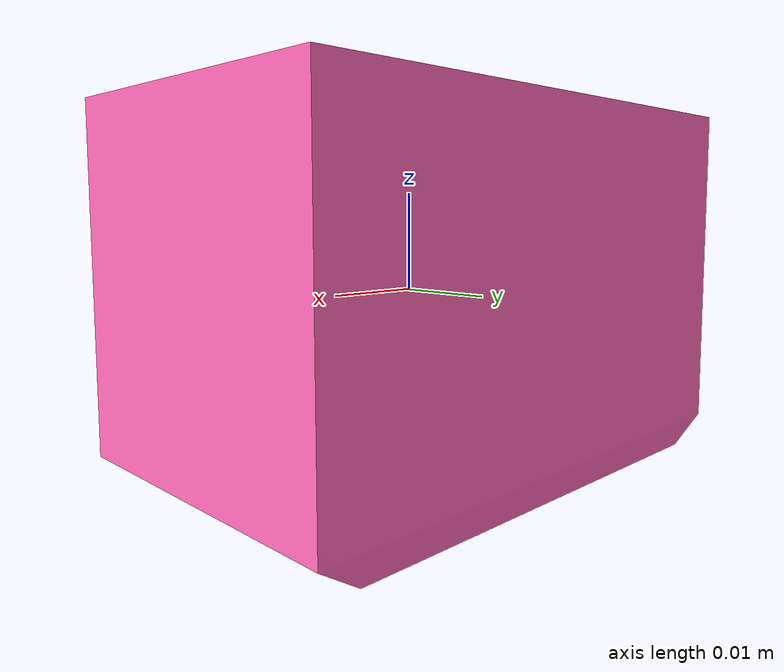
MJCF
<mujoco model="shapenetsem33">
  <asset>
    <mesh file="meshes/shapenetsem33/shapenetsem33_0.stl" name="shapenetsem33_0" scale="0.9 0.9 0.9"/>
    <texture file="../textures/texture33-0.png" type="2d" name="tex-sem33"/>
    <material name="sem33" reflectance="0.7" texrepeat="90 90" texture="tex-sem33" texuniform="true"/>
  </asset>
  <worldbody>
    <body>
      <body name="collision">
        <geom pos="0 0 0" mesh="shapenetsem33_0" type="mesh" solimp="0.998 0.998 0.001" solref="0.001 1" density="100" friction="0.95 0.3 0.1" rgba="1 0.41 0.71 1" group="1" condim="4"/>
      </body>
      <body name="visual">
        <geom pos="0 0 0" mesh="shapenetsem33_0" type="mesh" rgba="0 1 0 1" conaffinity="0" contype="0" group="0" mass="0.0001"/>
      </body>
      <site rgba="0 0 0 0" size="0.005" pos="0 0 -0.06" name="bottom_site"/>
      <site rgba="0 0 0 0" size="0.005" pos="0 0 0.04" name="top_site"/>
      <site rgba="0 0 0 0" size="0.005" pos="0.025 0.025 0" name="horizontal_radius_site"/>
    </body>
  </worldbody>
</mujoco>
